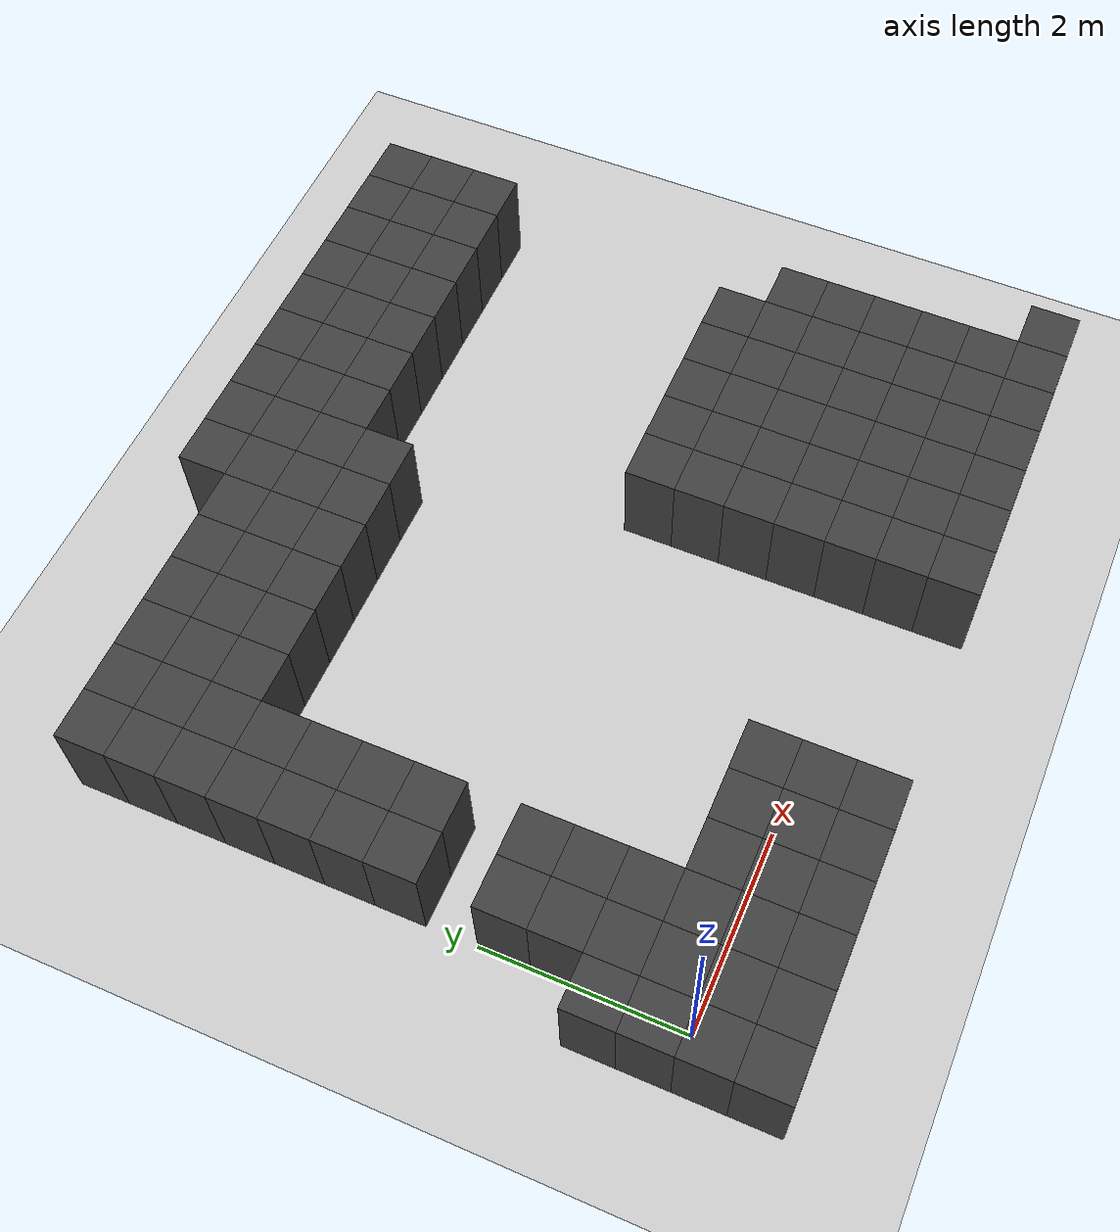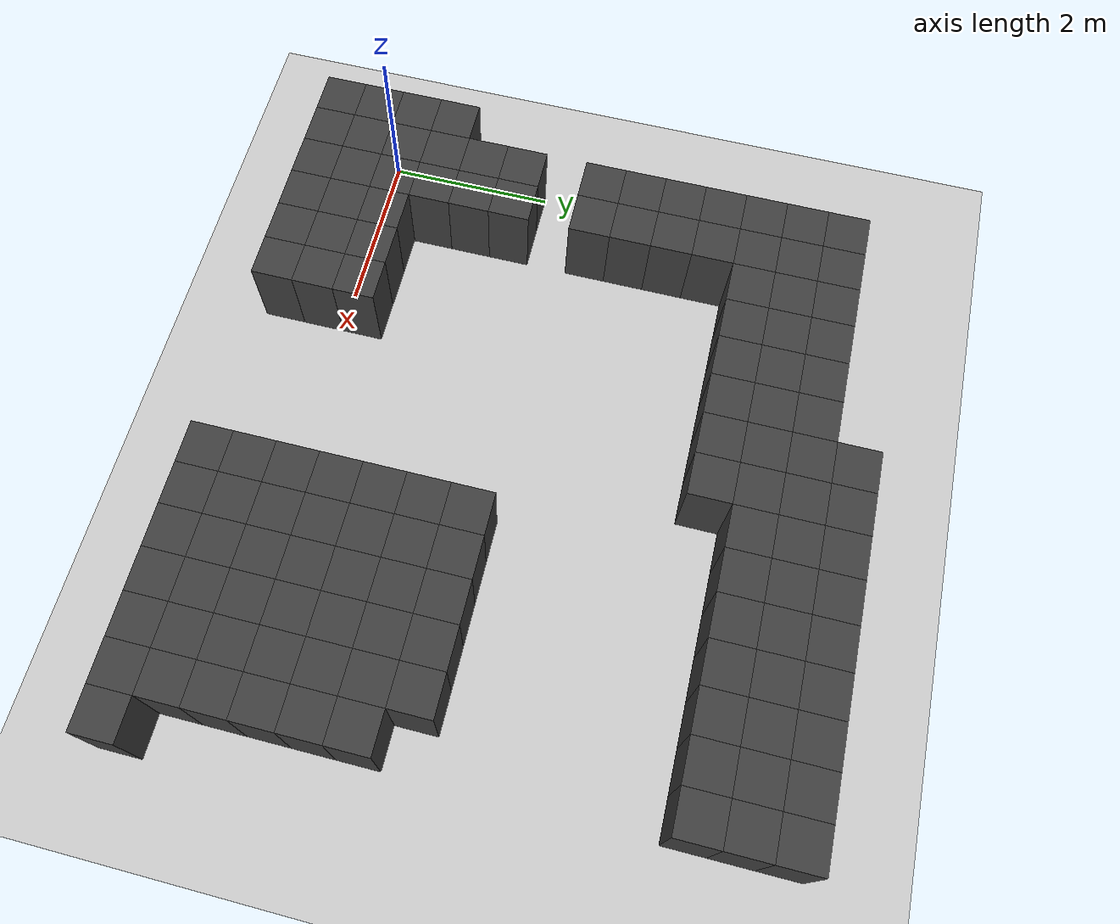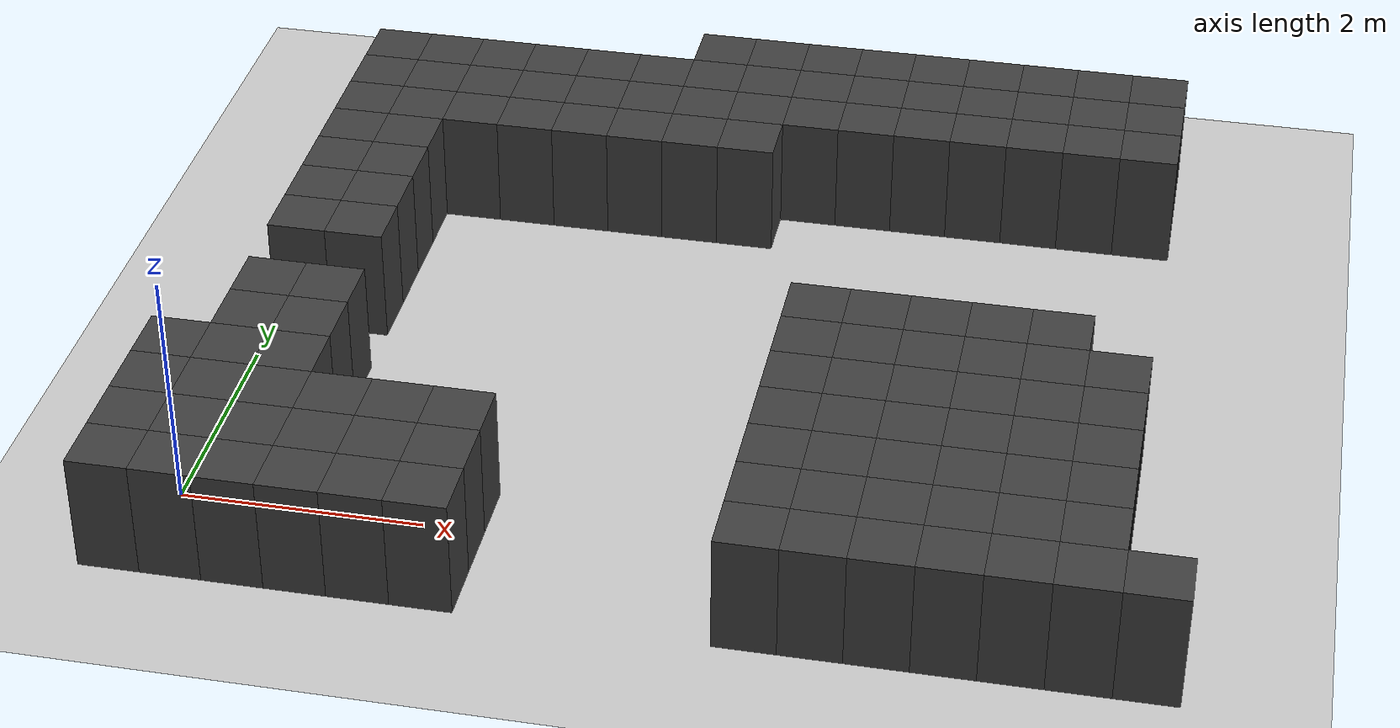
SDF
<sdf version="1.7">
 <world name="map_14888">
  <model name="ground_plane">
   <static>true</static>
   <link name="link">
    <collision name="collision">
     <geometry><plane><normal>0 0 1</normal><size>200 200</size></plane></geometry>
    </collision>
    <visual name="visual">
     <geometry><plane><normal>0 0 1</normal><size>200 200</size></plane></geometry>
     <material><ambient>0.8 0.8 0.8 1</ambient><diffuse>0.8 0.8 0.8 1</diffuse></material>
    </visual>
   </link>
  </model>
  <model name="maze_environment">
   <static>true</static>
   <link name="wall_473">
    <pose>3.250 6.250 0.500 0 0 0</pose>
    <collision name="col"><geometry><box><size>0.5 0.5 1.0</size></box></geometry></collision>
    <visual name="vis">
     <geometry><box><size>0.5 0.5 1.0</size></box></geometry>
     <material><ambient>0.15 0.15 0.15 1</ambient><diffuse>0.25 0.25 0.25 1</diffuse></material>
    </visual>
   </link>
   <link name="wall_474">
    <pose>3.750 6.250 0.500 0 0 0</pose>
    <collision name="col"><geometry><box><size>0.5 0.5 1.0</size></box></geometry></collision>
    <visual name="vis">
     <geometry><box><size>0.5 0.5 1.0</size></box></geometry>
     <material><ambient>0.15 0.15 0.15 1</ambient><diffuse>0.25 0.25 0.25 1</diffuse></material>
    </visual>
   </link>
   <link name="wall_475">
    <pose>4.250 6.250 0.500 0 0 0</pose>
    <collision name="col"><geometry><box><size>0.5 0.5 1.0</size></box></geometry></collision>
    <visual name="vis">
     <geometry><box><size>0.5 0.5 1.0</size></box></geometry>
     <material><ambient>0.15 0.15 0.15 1</ambient><diffuse>0.25 0.25 0.25 1</diffuse></material>
    </visual>
   </link>
   <link name="wall_476">
    <pose>4.750 6.250 0.500 0 0 0</pose>
    <collision name="col"><geometry><box><size>0.5 0.5 1.0</size></box></geometry></collision>
    <visual name="vis">
     <geometry><box><size>0.5 0.5 1.0</size></box></geometry>
     <material><ambient>0.15 0.15 0.15 1</ambient><diffuse>0.25 0.25 0.25 1</diffuse></material>
    </visual>
   </link>
   <link name="wall_477">
    <pose>5.250 6.250 0.500 0 0 0</pose>
    <collision name="col"><geometry><box><size>0.5 0.5 1.0</size></box></geometry></collision>
    <visual name="vis">
     <geometry><box><size>0.5 0.5 1.0</size></box></geometry>
     <material><ambient>0.15 0.15 0.15 1</ambient><diffuse>0.25 0.25 0.25 1</diffuse></material>
    </visual>
   </link>
   <link name="wall_478">
    <pose>5.750 6.250 0.500 0 0 0</pose>
    <collision name="col"><geometry><box><size>0.5 0.5 1.0</size></box></geometry></collision>
    <visual name="vis">
     <geometry><box><size>0.5 0.5 1.0</size></box></geometry>
     <material><ambient>0.15 0.15 0.15 1</ambient><diffuse>0.25 0.25 0.25 1</diffuse></material>
    </visual>
   </link>
   <link name="wall_479">
    <pose>6.250 6.250 0.500 0 0 0</pose>
    <collision name="col"><geometry><box><size>0.5 0.5 1.0</size></box></geometry></collision>
    <visual name="vis">
     <geometry><box><size>0.5 0.5 1.0</size></box></geometry>
     <material><ambient>0.15 0.15 0.15 1</ambient><diffuse>0.25 0.25 0.25 1</diffuse></material>
    </visual>
   </link>
   <link name="wall_480">
    <pose>6.750 6.250 0.500 0 0 0</pose>
    <collision name="col"><geometry><box><size>0.5 0.5 1.0</size></box></geometry></collision>
    <visual name="vis">
     <geometry><box><size>0.5 0.5 1.0</size></box></geometry>
     <material><ambient>0.15 0.15 0.15 1</ambient><diffuse>0.25 0.25 0.25 1</diffuse></material>
    </visual>
   </link>
   <link name="wall_481">
    <pose>7.250 6.250 0.500 0 0 0</pose>
    <collision name="col"><geometry><box><size>0.5 0.5 1.0</size></box></geometry></collision>
    <visual name="vis">
     <geometry><box><size>0.5 0.5 1.0</size></box></geometry>
     <material><ambient>0.15 0.15 0.15 1</ambient><diffuse>0.25 0.25 0.25 1</diffuse></material>
    </visual>
   </link>
   <link name="wall_502">
    <pose>0.250 5.750 0.500 0 0 0</pose>
    <collision name="col"><geometry><box><size>0.5 0.5 1.0</size></box></geometry></collision>
    <visual name="vis">
     <geometry><box><size>0.5 0.5 1.0</size></box></geometry>
     <material><ambient>0.15 0.15 0.15 1</ambient><diffuse>0.25 0.25 0.25 1</diffuse></material>
    </visual>
   </link>
   <link name="wall_503">
    <pose>0.750 5.750 0.500 0 0 0</pose>
    <collision name="col"><geometry><box><size>0.5 0.5 1.0</size></box></geometry></collision>
    <visual name="vis">
     <geometry><box><size>0.5 0.5 1.0</size></box></geometry>
     <material><ambient>0.15 0.15 0.15 1</ambient><diffuse>0.25 0.25 0.25 1</diffuse></material>
    </visual>
   </link>
   <link name="wall_504">
    <pose>1.250 5.750 0.500 0 0 0</pose>
    <collision name="col"><geometry><box><size>0.5 0.5 1.0</size></box></geometry></collision>
    <visual name="vis">
     <geometry><box><size>0.5 0.5 1.0</size></box></geometry>
     <material><ambient>0.15 0.15 0.15 1</ambient><diffuse>0.25 0.25 0.25 1</diffuse></material>
    </visual>
   </link>
   <link name="wall_505">
    <pose>1.750 5.750 0.500 0 0 0</pose>
    <collision name="col"><geometry><box><size>0.5 0.5 1.0</size></box></geometry></collision>
    <visual name="vis">
     <geometry><box><size>0.5 0.5 1.0</size></box></geometry>
     <material><ambient>0.15 0.15 0.15 1</ambient><diffuse>0.25 0.25 0.25 1</diffuse></material>
    </visual>
   </link>
   <link name="wall_506">
    <pose>2.250 5.750 0.500 0 0 0</pose>
    <collision name="col"><geometry><box><size>0.5 0.5 1.0</size></box></geometry></collision>
    <visual name="vis">
     <geometry><box><size>0.5 0.5 1.0</size></box></geometry>
     <material><ambient>0.15 0.15 0.15 1</ambient><diffuse>0.25 0.25 0.25 1</diffuse></material>
    </visual>
   </link>
   <link name="wall_507">
    <pose>2.750 5.750 0.500 0 0 0</pose>
    <collision name="col"><geometry><box><size>0.5 0.5 1.0</size></box></geometry></collision>
    <visual name="vis">
     <geometry><box><size>0.5 0.5 1.0</size></box></geometry>
     <material><ambient>0.15 0.15 0.15 1</ambient><diffuse>0.25 0.25 0.25 1</diffuse></material>
    </visual>
   </link>
   <link name="wall_508">
    <pose>3.250 5.750 0.500 0 0 0</pose>
    <collision name="col"><geometry><box><size>0.5 0.5 1.0</size></box></geometry></collision>
    <visual name="vis">
     <geometry><box><size>0.5 0.5 1.0</size></box></geometry>
     <material><ambient>0.15 0.15 0.15 1</ambient><diffuse>0.25 0.25 0.25 1</diffuse></material>
    </visual>
   </link>
   <link name="wall_509">
    <pose>3.750 5.750 0.500 0 0 0</pose>
    <collision name="col"><geometry><box><size>0.5 0.5 1.0</size></box></geometry></collision>
    <visual name="vis">
     <geometry><box><size>0.5 0.5 1.0</size></box></geometry>
     <material><ambient>0.15 0.15 0.15 1</ambient><diffuse>0.25 0.25 0.25 1</diffuse></material>
    </visual>
   </link>
   <link name="wall_510">
    <pose>4.250 5.750 0.500 0 0 0</pose>
    <collision name="col"><geometry><box><size>0.5 0.5 1.0</size></box></geometry></collision>
    <visual name="vis">
     <geometry><box><size>0.5 0.5 1.0</size></box></geometry>
     <material><ambient>0.15 0.15 0.15 1</ambient><diffuse>0.25 0.25 0.25 1</diffuse></material>
    </visual>
   </link>
   <link name="wall_511">
    <pose>4.750 5.750 0.500 0 0 0</pose>
    <collision name="col"><geometry><box><size>0.5 0.5 1.0</size></box></geometry></collision>
    <visual name="vis">
     <geometry><box><size>0.5 0.5 1.0</size></box></geometry>
     <material><ambient>0.15 0.15 0.15 1</ambient><diffuse>0.25 0.25 0.25 1</diffuse></material>
    </visual>
   </link>
   <link name="wall_512">
    <pose>5.250 5.750 0.500 0 0 0</pose>
    <collision name="col"><geometry><box><size>0.5 0.5 1.0</size></box></geometry></collision>
    <visual name="vis">
     <geometry><box><size>0.5 0.5 1.0</size></box></geometry>
     <material><ambient>0.15 0.15 0.15 1</ambient><diffuse>0.25 0.25 0.25 1</diffuse></material>
    </visual>
   </link>
   <link name="wall_513">
    <pose>5.750 5.750 0.500 0 0 0</pose>
    <collision name="col"><geometry><box><size>0.5 0.5 1.0</size></box></geometry></collision>
    <visual name="vis">
     <geometry><box><size>0.5 0.5 1.0</size></box></geometry>
     <material><ambient>0.15 0.15 0.15 1</ambient><diffuse>0.25 0.25 0.25 1</diffuse></material>
    </visual>
   </link>
   <link name="wall_514">
    <pose>6.250 5.750 0.500 0 0 0</pose>
    <collision name="col"><geometry><box><size>0.5 0.5 1.0</size></box></geometry></collision>
    <visual name="vis">
     <geometry><box><size>0.5 0.5 1.0</size></box></geometry>
     <material><ambient>0.15 0.15 0.15 1</ambient><diffuse>0.25 0.25 0.25 1</diffuse></material>
    </visual>
   </link>
   <link name="wall_515">
    <pose>6.750 5.750 0.500 0 0 0</pose>
    <collision name="col"><geometry><box><size>0.5 0.5 1.0</size></box></geometry></collision>
    <visual name="vis">
     <geometry><box><size>0.5 0.5 1.0</size></box></geometry>
     <material><ambient>0.15 0.15 0.15 1</ambient><diffuse>0.25 0.25 0.25 1</diffuse></material>
    </visual>
   </link>
   <link name="wall_516">
    <pose>7.250 5.750 0.500 0 0 0</pose>
    <collision name="col"><geometry><box><size>0.5 0.5 1.0</size></box></geometry></collision>
    <visual name="vis">
     <geometry><box><size>0.5 0.5 1.0</size></box></geometry>
     <material><ambient>0.15 0.15 0.15 1</ambient><diffuse>0.25 0.25 0.25 1</diffuse></material>
    </visual>
   </link>
   <link name="wall_537">
    <pose>0.250 5.250 0.500 0 0 0</pose>
    <collision name="col"><geometry><box><size>0.5 0.5 1.0</size></box></geometry></collision>
    <visual name="vis">
     <geometry><box><size>0.5 0.5 1.0</size></box></geometry>
     <material><ambient>0.15 0.15 0.15 1</ambient><diffuse>0.25 0.25 0.25 1</diffuse></material>
    </visual>
   </link>
   <link name="wall_538">
    <pose>0.750 5.250 0.500 0 0 0</pose>
    <collision name="col"><geometry><box><size>0.5 0.5 1.0</size></box></geometry></collision>
    <visual name="vis">
     <geometry><box><size>0.5 0.5 1.0</size></box></geometry>
     <material><ambient>0.15 0.15 0.15 1</ambient><diffuse>0.25 0.25 0.25 1</diffuse></material>
    </visual>
   </link>
   <link name="wall_539">
    <pose>1.250 5.250 0.500 0 0 0</pose>
    <collision name="col"><geometry><box><size>0.5 0.5 1.0</size></box></geometry></collision>
    <visual name="vis">
     <geometry><box><size>0.5 0.5 1.0</size></box></geometry>
     <material><ambient>0.15 0.15 0.15 1</ambient><diffuse>0.25 0.25 0.25 1</diffuse></material>
    </visual>
   </link>
   <link name="wall_540">
    <pose>1.750 5.250 0.500 0 0 0</pose>
    <collision name="col"><geometry><box><size>0.5 0.5 1.0</size></box></geometry></collision>
    <visual name="vis">
     <geometry><box><size>0.5 0.5 1.0</size></box></geometry>
     <material><ambient>0.15 0.15 0.15 1</ambient><diffuse>0.25 0.25 0.25 1</diffuse></material>
    </visual>
   </link>
   <link name="wall_541">
    <pose>2.250 5.250 0.500 0 0 0</pose>
    <collision name="col"><geometry><box><size>0.5 0.5 1.0</size></box></geometry></collision>
    <visual name="vis">
     <geometry><box><size>0.5 0.5 1.0</size></box></geometry>
     <material><ambient>0.15 0.15 0.15 1</ambient><diffuse>0.25 0.25 0.25 1</diffuse></material>
    </visual>
   </link>
   <link name="wall_542">
    <pose>2.750 5.250 0.500 0 0 0</pose>
    <collision name="col"><geometry><box><size>0.5 0.5 1.0</size></box></geometry></collision>
    <visual name="vis">
     <geometry><box><size>0.5 0.5 1.0</size></box></geometry>
     <material><ambient>0.15 0.15 0.15 1</ambient><diffuse>0.25 0.25 0.25 1</diffuse></material>
    </visual>
   </link>
   <link name="wall_543">
    <pose>3.250 5.250 0.500 0 0 0</pose>
    <collision name="col"><geometry><box><size>0.5 0.5 1.0</size></box></geometry></collision>
    <visual name="vis">
     <geometry><box><size>0.5 0.5 1.0</size></box></geometry>
     <material><ambient>0.15 0.15 0.15 1</ambient><diffuse>0.25 0.25 0.25 1</diffuse></material>
    </visual>
   </link>
   <link name="wall_544">
    <pose>3.750 5.250 0.500 0 0 0</pose>
    <collision name="col"><geometry><box><size>0.5 0.5 1.0</size></box></geometry></collision>
    <visual name="vis">
     <geometry><box><size>0.5 0.5 1.0</size></box></geometry>
     <material><ambient>0.15 0.15 0.15 1</ambient><diffuse>0.25 0.25 0.25 1</diffuse></material>
    </visual>
   </link>
   <link name="wall_545">
    <pose>4.250 5.250 0.500 0 0 0</pose>
    <collision name="col"><geometry><box><size>0.5 0.5 1.0</size></box></geometry></collision>
    <visual name="vis">
     <geometry><box><size>0.5 0.5 1.0</size></box></geometry>
     <material><ambient>0.15 0.15 0.15 1</ambient><diffuse>0.25 0.25 0.25 1</diffuse></material>
    </visual>
   </link>
   <link name="wall_546">
    <pose>4.750 5.250 0.500 0 0 0</pose>
    <collision name="col"><geometry><box><size>0.5 0.5 1.0</size></box></geometry></collision>
    <visual name="vis">
     <geometry><box><size>0.5 0.5 1.0</size></box></geometry>
     <material><ambient>0.15 0.15 0.15 1</ambient><diffuse>0.25 0.25 0.25 1</diffuse></material>
    </visual>
   </link>
   <link name="wall_547">
    <pose>5.250 5.250 0.500 0 0 0</pose>
    <collision name="col"><geometry><box><size>0.5 0.5 1.0</size></box></geometry></collision>
    <visual name="vis">
     <geometry><box><size>0.5 0.5 1.0</size></box></geometry>
     <material><ambient>0.15 0.15 0.15 1</ambient><diffuse>0.25 0.25 0.25 1</diffuse></material>
    </visual>
   </link>
   <link name="wall_548">
    <pose>5.750 5.250 0.500 0 0 0</pose>
    <collision name="col"><geometry><box><size>0.5 0.5 1.0</size></box></geometry></collision>
    <visual name="vis">
     <geometry><box><size>0.5 0.5 1.0</size></box></geometry>
     <material><ambient>0.15 0.15 0.15 1</ambient><diffuse>0.25 0.25 0.25 1</diffuse></material>
    </visual>
   </link>
   <link name="wall_549">
    <pose>6.250 5.250 0.500 0 0 0</pose>
    <collision name="col"><geometry><box><size>0.5 0.5 1.0</size></box></geometry></collision>
    <visual name="vis">
     <geometry><box><size>0.5 0.5 1.0</size></box></geometry>
     <material><ambient>0.15 0.15 0.15 1</ambient><diffuse>0.25 0.25 0.25 1</diffuse></material>
    </visual>
   </link>
   <link name="wall_550">
    <pose>6.750 5.250 0.500 0 0 0</pose>
    <collision name="col"><geometry><box><size>0.5 0.5 1.0</size></box></geometry></collision>
    <visual name="vis">
     <geometry><box><size>0.5 0.5 1.0</size></box></geometry>
     <material><ambient>0.15 0.15 0.15 1</ambient><diffuse>0.25 0.25 0.25 1</diffuse></material>
    </visual>
   </link>
   <link name="wall_551">
    <pose>7.250 5.250 0.500 0 0 0</pose>
    <collision name="col"><geometry><box><size>0.5 0.5 1.0</size></box></geometry></collision>
    <visual name="vis">
     <geometry><box><size>0.5 0.5 1.0</size></box></geometry>
     <material><ambient>0.15 0.15 0.15 1</ambient><diffuse>0.25 0.25 0.25 1</diffuse></material>
    </visual>
   </link>
   <link name="wall_573">
    <pose>0.250 4.750 0.500 0 0 0</pose>
    <collision name="col"><geometry><box><size>0.5 0.5 1.0</size></box></geometry></collision>
    <visual name="vis">
     <geometry><box><size>0.5 0.5 1.0</size></box></geometry>
     <material><ambient>0.15 0.15 0.15 1</ambient><diffuse>0.25 0.25 0.25 1</diffuse></material>
    </visual>
   </link>
   <link name="wall_574">
    <pose>0.750 4.750 0.500 0 0 0</pose>
    <collision name="col"><geometry><box><size>0.5 0.5 1.0</size></box></geometry></collision>
    <visual name="vis">
     <geometry><box><size>0.5 0.5 1.0</size></box></geometry>
     <material><ambient>0.15 0.15 0.15 1</ambient><diffuse>0.25 0.25 0.25 1</diffuse></material>
    </visual>
   </link>
   <link name="wall_575">
    <pose>1.250 4.750 0.500 0 0 0</pose>
    <collision name="col"><geometry><box><size>0.5 0.5 1.0</size></box></geometry></collision>
    <visual name="vis">
     <geometry><box><size>0.5 0.5 1.0</size></box></geometry>
     <material><ambient>0.15 0.15 0.15 1</ambient><diffuse>0.25 0.25 0.25 1</diffuse></material>
    </visual>
   </link>
   <link name="wall_576">
    <pose>1.750 4.750 0.500 0 0 0</pose>
    <collision name="col"><geometry><box><size>0.5 0.5 1.0</size></box></geometry></collision>
    <visual name="vis">
     <geometry><box><size>0.5 0.5 1.0</size></box></geometry>
     <material><ambient>0.15 0.15 0.15 1</ambient><diffuse>0.25 0.25 0.25 1</diffuse></material>
    </visual>
   </link>
   <link name="wall_577">
    <pose>2.250 4.750 0.500 0 0 0</pose>
    <collision name="col"><geometry><box><size>0.5 0.5 1.0</size></box></geometry></collision>
    <visual name="vis">
     <geometry><box><size>0.5 0.5 1.0</size></box></geometry>
     <material><ambient>0.15 0.15 0.15 1</ambient><diffuse>0.25 0.25 0.25 1</diffuse></material>
    </visual>
   </link>
   <link name="wall_578">
    <pose>2.750 4.750 0.500 0 0 0</pose>
    <collision name="col"><geometry><box><size>0.5 0.5 1.0</size></box></geometry></collision>
    <visual name="vis">
     <geometry><box><size>0.5 0.5 1.0</size></box></geometry>
     <material><ambient>0.15 0.15 0.15 1</ambient><diffuse>0.25 0.25 0.25 1</diffuse></material>
    </visual>
   </link>
   <link name="wall_579">
    <pose>3.250 4.750 0.500 0 0 0</pose>
    <collision name="col"><geometry><box><size>0.5 0.5 1.0</size></box></geometry></collision>
    <visual name="vis">
     <geometry><box><size>0.5 0.5 1.0</size></box></geometry>
     <material><ambient>0.15 0.15 0.15 1</ambient><diffuse>0.25 0.25 0.25 1</diffuse></material>
    </visual>
   </link>
   <link name="wall_580">
    <pose>3.750 4.750 0.500 0 0 0</pose>
    <collision name="col"><geometry><box><size>0.5 0.5 1.0</size></box></geometry></collision>
    <visual name="vis">
     <geometry><box><size>0.5 0.5 1.0</size></box></geometry>
     <material><ambient>0.15 0.15 0.15 1</ambient><diffuse>0.25 0.25 0.25 1</diffuse></material>
    </visual>
   </link>
   <link name="wall_603">
    <pose>0.250 4.250 0.500 0 0 0</pose>
    <collision name="col"><geometry><box><size>0.5 0.5 1.0</size></box></geometry></collision>
    <visual name="vis">
     <geometry><box><size>0.5 0.5 1.0</size></box></geometry>
     <material><ambient>0.15 0.15 0.15 1</ambient><diffuse>0.25 0.25 0.25 1</diffuse></material>
    </visual>
   </link>
   <link name="wall_604">
    <pose>0.750 4.250 0.500 0 0 0</pose>
    <collision name="col"><geometry><box><size>0.5 0.5 1.0</size></box></geometry></collision>
    <visual name="vis">
     <geometry><box><size>0.5 0.5 1.0</size></box></geometry>
     <material><ambient>0.15 0.15 0.15 1</ambient><diffuse>0.25 0.25 0.25 1</diffuse></material>
    </visual>
   </link>
   <link name="wall_628">
    <pose>0.250 3.750 0.500 0 0 0</pose>
    <collision name="col"><geometry><box><size>0.5 0.5 1.0</size></box></geometry></collision>
    <visual name="vis">
     <geometry><box><size>0.5 0.5 1.0</size></box></geometry>
     <material><ambient>0.15 0.15 0.15 1</ambient><diffuse>0.25 0.25 0.25 1</diffuse></material>
    </visual>
   </link>
   <link name="wall_629">
    <pose>0.750 3.750 0.500 0 0 0</pose>
    <collision name="col"><geometry><box><size>0.5 0.5 1.0</size></box></geometry></collision>
    <visual name="vis">
     <geometry><box><size>0.5 0.5 1.0</size></box></geometry>
     <material><ambient>0.15 0.15 0.15 1</ambient><diffuse>0.25 0.25 0.25 1</diffuse></material>
    </visual>
   </link>
   <link name="wall_648">
    <pose>0.250 3.250 0.500 0 0 0</pose>
    <collision name="col"><geometry><box><size>0.5 0.5 1.0</size></box></geometry></collision>
    <visual name="vis">
     <geometry><box><size>0.5 0.5 1.0</size></box></geometry>
     <material><ambient>0.15 0.15 0.15 1</ambient><diffuse>0.25 0.25 0.25 1</diffuse></material>
    </visual>
   </link>
   <link name="wall_649">
    <pose>0.750 3.250 0.500 0 0 0</pose>
    <collision name="col"><geometry><box><size>0.5 0.5 1.0</size></box></geometry></collision>
    <visual name="vis">
     <geometry><box><size>0.5 0.5 1.0</size></box></geometry>
     <material><ambient>0.15 0.15 0.15 1</ambient><diffuse>0.25 0.25 0.25 1</diffuse></material>
    </visual>
   </link>
   <link name="wall_672">
    <pose>0.250 2.750 0.500 0 0 0</pose>
    <collision name="col"><geometry><box><size>0.5 0.5 1.0</size></box></geometry></collision>
    <visual name="vis">
     <geometry><box><size>0.5 0.5 1.0</size></box></geometry>
     <material><ambient>0.15 0.15 0.15 1</ambient><diffuse>0.25 0.25 0.25 1</diffuse></material>
    </visual>
   </link>
   <link name="wall_673">
    <pose>0.750 2.750 0.500 0 0 0</pose>
    <collision name="col"><geometry><box><size>0.5 0.5 1.0</size></box></geometry></collision>
    <visual name="vis">
     <geometry><box><size>0.5 0.5 1.0</size></box></geometry>
     <material><ambient>0.15 0.15 0.15 1</ambient><diffuse>0.25 0.25 0.25 1</diffuse></material>
    </visual>
   </link>
   <link name="wall_693">
    <pose>4.750 2.250 0.500 0 0 0</pose>
    <collision name="col"><geometry><box><size>0.5 0.5 1.0</size></box></geometry></collision>
    <visual name="vis">
     <geometry><box><size>0.5 0.5 1.0</size></box></geometry>
     <material><ambient>0.15 0.15 0.15 1</ambient><diffuse>0.25 0.25 0.25 1</diffuse></material>
    </visual>
   </link>
   <link name="wall_694">
    <pose>5.250 2.250 0.500 0 0 0</pose>
    <collision name="col"><geometry><box><size>0.5 0.5 1.0</size></box></geometry></collision>
    <visual name="vis">
     <geometry><box><size>0.5 0.5 1.0</size></box></geometry>
     <material><ambient>0.15 0.15 0.15 1</ambient><diffuse>0.25 0.25 0.25 1</diffuse></material>
    </visual>
   </link>
   <link name="wall_695">
    <pose>5.750 2.250 0.500 0 0 0</pose>
    <collision name="col"><geometry><box><size>0.5 0.5 1.0</size></box></geometry></collision>
    <visual name="vis">
     <geometry><box><size>0.5 0.5 1.0</size></box></geometry>
     <material><ambient>0.15 0.15 0.15 1</ambient><diffuse>0.25 0.25 0.25 1</diffuse></material>
    </visual>
   </link>
   <link name="wall_696">
    <pose>6.250 2.250 0.500 0 0 0</pose>
    <collision name="col"><geometry><box><size>0.5 0.5 1.0</size></box></geometry></collision>
    <visual name="vis">
     <geometry><box><size>0.5 0.5 1.0</size></box></geometry>
     <material><ambient>0.15 0.15 0.15 1</ambient><diffuse>0.25 0.25 0.25 1</diffuse></material>
    </visual>
   </link>
   <link name="wall_697">
    <pose>6.750 2.250 0.500 0 0 0</pose>
    <collision name="col"><geometry><box><size>0.5 0.5 1.0</size></box></geometry></collision>
    <visual name="vis">
     <geometry><box><size>0.5 0.5 1.0</size></box></geometry>
     <material><ambient>0.15 0.15 0.15 1</ambient><diffuse>0.25 0.25 0.25 1</diffuse></material>
    </visual>
   </link>
   <link name="wall_721">
    <pose>0.250 1.750 0.500 0 0 0</pose>
    <collision name="col"><geometry><box><size>0.5 0.5 1.0</size></box></geometry></collision>
    <visual name="vis">
     <geometry><box><size>0.5 0.5 1.0</size></box></geometry>
     <material><ambient>0.15 0.15 0.15 1</ambient><diffuse>0.25 0.25 0.25 1</diffuse></material>
    </visual>
   </link>
   <link name="wall_722">
    <pose>0.750 1.750 0.500 0 0 0</pose>
    <collision name="col"><geometry><box><size>0.5 0.5 1.0</size></box></geometry></collision>
    <visual name="vis">
     <geometry><box><size>0.5 0.5 1.0</size></box></geometry>
     <material><ambient>0.15 0.15 0.15 1</ambient><diffuse>0.25 0.25 0.25 1</diffuse></material>
    </visual>
   </link>
   <link name="wall_723">
    <pose>4.750 1.750 0.500 0 0 0</pose>
    <collision name="col"><geometry><box><size>0.5 0.5 1.0</size></box></geometry></collision>
    <visual name="vis">
     <geometry><box><size>0.5 0.5 1.0</size></box></geometry>
     <material><ambient>0.15 0.15 0.15 1</ambient><diffuse>0.25 0.25 0.25 1</diffuse></material>
    </visual>
   </link>
   <link name="wall_724">
    <pose>5.250 1.750 0.500 0 0 0</pose>
    <collision name="col"><geometry><box><size>0.5 0.5 1.0</size></box></geometry></collision>
    <visual name="vis">
     <geometry><box><size>0.5 0.5 1.0</size></box></geometry>
     <material><ambient>0.15 0.15 0.15 1</ambient><diffuse>0.25 0.25 0.25 1</diffuse></material>
    </visual>
   </link>
   <link name="wall_725">
    <pose>5.750 1.750 0.500 0 0 0</pose>
    <collision name="col"><geometry><box><size>0.5 0.5 1.0</size></box></geometry></collision>
    <visual name="vis">
     <geometry><box><size>0.5 0.5 1.0</size></box></geometry>
     <material><ambient>0.15 0.15 0.15 1</ambient><diffuse>0.25 0.25 0.25 1</diffuse></material>
    </visual>
   </link>
   <link name="wall_726">
    <pose>6.250 1.750 0.500 0 0 0</pose>
    <collision name="col"><geometry><box><size>0.5 0.5 1.0</size></box></geometry></collision>
    <visual name="vis">
     <geometry><box><size>0.5 0.5 1.0</size></box></geometry>
     <material><ambient>0.15 0.15 0.15 1</ambient><diffuse>0.25 0.25 0.25 1</diffuse></material>
    </visual>
   </link>
   <link name="wall_727">
    <pose>6.750 1.750 0.500 0 0 0</pose>
    <collision name="col"><geometry><box><size>0.5 0.5 1.0</size></box></geometry></collision>
    <visual name="vis">
     <geometry><box><size>0.5 0.5 1.0</size></box></geometry>
     <material><ambient>0.15 0.15 0.15 1</ambient><diffuse>0.25 0.25 0.25 1</diffuse></material>
    </visual>
   </link>
   <link name="wall_728">
    <pose>7.250 1.750 0.500 0 0 0</pose>
    <collision name="col"><geometry><box><size>0.5 0.5 1.0</size></box></geometry></collision>
    <visual name="vis">
     <geometry><box><size>0.5 0.5 1.0</size></box></geometry>
     <material><ambient>0.15 0.15 0.15 1</ambient><diffuse>0.25 0.25 0.25 1</diffuse></material>
    </visual>
   </link>
   <link name="wall_763">
    <pose>0.250 1.250 0.500 0 0 0</pose>
    <collision name="col"><geometry><box><size>0.5 0.5 1.0</size></box></geometry></collision>
    <visual name="vis">
     <geometry><box><size>0.5 0.5 1.0</size></box></geometry>
     <material><ambient>0.15 0.15 0.15 1</ambient><diffuse>0.25 0.25 0.25 1</diffuse></material>
    </visual>
   </link>
   <link name="wall_764">
    <pose>0.750 1.250 0.500 0 0 0</pose>
    <collision name="col"><geometry><box><size>0.5 0.5 1.0</size></box></geometry></collision>
    <visual name="vis">
     <geometry><box><size>0.5 0.5 1.0</size></box></geometry>
     <material><ambient>0.15 0.15 0.15 1</ambient><diffuse>0.25 0.25 0.25 1</diffuse></material>
    </visual>
   </link>
   <link name="wall_765">
    <pose>4.750 1.250 0.500 0 0 0</pose>
    <collision name="col"><geometry><box><size>0.5 0.5 1.0</size></box></geometry></collision>
    <visual name="vis">
     <geometry><box><size>0.5 0.5 1.0</size></box></geometry>
     <material><ambient>0.15 0.15 0.15 1</ambient><diffuse>0.25 0.25 0.25 1</diffuse></material>
    </visual>
   </link>
   <link name="wall_766">
    <pose>5.250 1.250 0.500 0 0 0</pose>
    <collision name="col"><geometry><box><size>0.5 0.5 1.0</size></box></geometry></collision>
    <visual name="vis">
     <geometry><box><size>0.5 0.5 1.0</size></box></geometry>
     <material><ambient>0.15 0.15 0.15 1</ambient><diffuse>0.25 0.25 0.25 1</diffuse></material>
    </visual>
   </link>
   <link name="wall_767">
    <pose>5.750 1.250 0.500 0 0 0</pose>
    <collision name="col"><geometry><box><size>0.5 0.5 1.0</size></box></geometry></collision>
    <visual name="vis">
     <geometry><box><size>0.5 0.5 1.0</size></box></geometry>
     <material><ambient>0.15 0.15 0.15 1</ambient><diffuse>0.25 0.25 0.25 1</diffuse></material>
    </visual>
   </link>
   <link name="wall_768">
    <pose>6.250 1.250 0.500 0 0 0</pose>
    <collision name="col"><geometry><box><size>0.5 0.5 1.0</size></box></geometry></collision>
    <visual name="vis">
     <geometry><box><size>0.5 0.5 1.0</size></box></geometry>
     <material><ambient>0.15 0.15 0.15 1</ambient><diffuse>0.25 0.25 0.25 1</diffuse></material>
    </visual>
   </link>
   <link name="wall_769">
    <pose>6.750 1.250 0.500 0 0 0</pose>
    <collision name="col"><geometry><box><size>0.5 0.5 1.0</size></box></geometry></collision>
    <visual name="vis">
     <geometry><box><size>0.5 0.5 1.0</size></box></geometry>
     <material><ambient>0.15 0.15 0.15 1</ambient><diffuse>0.25 0.25 0.25 1</diffuse></material>
    </visual>
   </link>
   <link name="wall_770">
    <pose>7.250 1.250 0.500 0 0 0</pose>
    <collision name="col"><geometry><box><size>0.5 0.5 1.0</size></box></geometry></collision>
    <visual name="vis">
     <geometry><box><size>0.5 0.5 1.0</size></box></geometry>
     <material><ambient>0.15 0.15 0.15 1</ambient><diffuse>0.25 0.25 0.25 1</diffuse></material>
    </visual>
   </link>
   <link name="wall_804">
    <pose>-0.250 0.750 0.500 0 0 0</pose>
    <collision name="col"><geometry><box><size>0.5 0.5 1.0</size></box></geometry></collision>
    <visual name="vis">
     <geometry><box><size>0.5 0.5 1.0</size></box></geometry>
     <material><ambient>0.15 0.15 0.15 1</ambient><diffuse>0.25 0.25 0.25 1</diffuse></material>
    </visual>
   </link>
   <link name="wall_805">
    <pose>0.250 0.750 0.500 0 0 0</pose>
    <collision name="col"><geometry><box><size>0.5 0.5 1.0</size></box></geometry></collision>
    <visual name="vis">
     <geometry><box><size>0.5 0.5 1.0</size></box></geometry>
     <material><ambient>0.15 0.15 0.15 1</ambient><diffuse>0.25 0.25 0.25 1</diffuse></material>
    </visual>
   </link>
   <link name="wall_806">
    <pose>0.750 0.750 0.500 0 0 0</pose>
    <collision name="col"><geometry><box><size>0.5 0.5 1.0</size></box></geometry></collision>
    <visual name="vis">
     <geometry><box><size>0.5 0.5 1.0</size></box></geometry>
     <material><ambient>0.15 0.15 0.15 1</ambient><diffuse>0.25 0.25 0.25 1</diffuse></material>
    </visual>
   </link>
   <link name="wall_807">
    <pose>4.750 0.750 0.500 0 0 0</pose>
    <collision name="col"><geometry><box><size>0.5 0.5 1.0</size></box></geometry></collision>
    <visual name="vis">
     <geometry><box><size>0.5 0.5 1.0</size></box></geometry>
     <material><ambient>0.15 0.15 0.15 1</ambient><diffuse>0.25 0.25 0.25 1</diffuse></material>
    </visual>
   </link>
   <link name="wall_808">
    <pose>5.250 0.750 0.500 0 0 0</pose>
    <collision name="col"><geometry><box><size>0.5 0.5 1.0</size></box></geometry></collision>
    <visual name="vis">
     <geometry><box><size>0.5 0.5 1.0</size></box></geometry>
     <material><ambient>0.15 0.15 0.15 1</ambient><diffuse>0.25 0.25 0.25 1</diffuse></material>
    </visual>
   </link>
   <link name="wall_809">
    <pose>5.750 0.750 0.500 0 0 0</pose>
    <collision name="col"><geometry><box><size>0.5 0.5 1.0</size></box></geometry></collision>
    <visual name="vis">
     <geometry><box><size>0.5 0.5 1.0</size></box></geometry>
     <material><ambient>0.15 0.15 0.15 1</ambient><diffuse>0.25 0.25 0.25 1</diffuse></material>
    </visual>
   </link>
   <link name="wall_810">
    <pose>6.250 0.750 0.500 0 0 0</pose>
    <collision name="col"><geometry><box><size>0.5 0.5 1.0</size></box></geometry></collision>
    <visual name="vis">
     <geometry><box><size>0.5 0.5 1.0</size></box></geometry>
     <material><ambient>0.15 0.15 0.15 1</ambient><diffuse>0.25 0.25 0.25 1</diffuse></material>
    </visual>
   </link>
   <link name="wall_811">
    <pose>6.750 0.750 0.500 0 0 0</pose>
    <collision name="col"><geometry><box><size>0.5 0.5 1.0</size></box></geometry></collision>
    <visual name="vis">
     <geometry><box><size>0.5 0.5 1.0</size></box></geometry>
     <material><ambient>0.15 0.15 0.15 1</ambient><diffuse>0.25 0.25 0.25 1</diffuse></material>
    </visual>
   </link>
   <link name="wall_812">
    <pose>7.250 0.750 0.500 0 0 0</pose>
    <collision name="col"><geometry><box><size>0.5 0.5 1.0</size></box></geometry></collision>
    <visual name="vis">
     <geometry><box><size>0.5 0.5 1.0</size></box></geometry>
     <material><ambient>0.15 0.15 0.15 1</ambient><diffuse>0.25 0.25 0.25 1</diffuse></material>
    </visual>
   </link>
   <link name="wall_842">
    <pose>-0.250 0.250 0.500 0 0 0</pose>
    <collision name="col"><geometry><box><size>0.5 0.5 1.0</size></box></geometry></collision>
    <visual name="vis">
     <geometry><box><size>0.5 0.5 1.0</size></box></geometry>
     <material><ambient>0.15 0.15 0.15 1</ambient><diffuse>0.25 0.25 0.25 1</diffuse></material>
    </visual>
   </link>
   <link name="wall_843">
    <pose>0.250 0.250 0.500 0 0 0</pose>
    <collision name="col"><geometry><box><size>0.5 0.5 1.0</size></box></geometry></collision>
    <visual name="vis">
     <geometry><box><size>0.5 0.5 1.0</size></box></geometry>
     <material><ambient>0.15 0.15 0.15 1</ambient><diffuse>0.25 0.25 0.25 1</diffuse></material>
    </visual>
   </link>
   <link name="wall_844">
    <pose>0.750 0.250 0.500 0 0 0</pose>
    <collision name="col"><geometry><box><size>0.5 0.5 1.0</size></box></geometry></collision>
    <visual name="vis">
     <geometry><box><size>0.5 0.5 1.0</size></box></geometry>
     <material><ambient>0.15 0.15 0.15 1</ambient><diffuse>0.25 0.25 0.25 1</diffuse></material>
    </visual>
   </link>
   <link name="wall_845">
    <pose>1.250 0.250 0.500 0 0 0</pose>
    <collision name="col"><geometry><box><size>0.5 0.5 1.0</size></box></geometry></collision>
    <visual name="vis">
     <geometry><box><size>0.5 0.5 1.0</size></box></geometry>
     <material><ambient>0.15 0.15 0.15 1</ambient><diffuse>0.25 0.25 0.25 1</diffuse></material>
    </visual>
   </link>
   <link name="wall_846">
    <pose>1.750 0.250 0.500 0 0 0</pose>
    <collision name="col"><geometry><box><size>0.5 0.5 1.0</size></box></geometry></collision>
    <visual name="vis">
     <geometry><box><size>0.5 0.5 1.0</size></box></geometry>
     <material><ambient>0.15 0.15 0.15 1</ambient><diffuse>0.25 0.25 0.25 1</diffuse></material>
    </visual>
   </link>
   <link name="wall_847">
    <pose>2.250 0.250 0.500 0 0 0</pose>
    <collision name="col"><geometry><box><size>0.5 0.5 1.0</size></box></geometry></collision>
    <visual name="vis">
     <geometry><box><size>0.5 0.5 1.0</size></box></geometry>
     <material><ambient>0.15 0.15 0.15 1</ambient><diffuse>0.25 0.25 0.25 1</diffuse></material>
    </visual>
   </link>
   <link name="wall_848">
    <pose>4.750 0.250 0.500 0 0 0</pose>
    <collision name="col"><geometry><box><size>0.5 0.5 1.0</size></box></geometry></collision>
    <visual name="vis">
     <geometry><box><size>0.5 0.5 1.0</size></box></geometry>
     <material><ambient>0.15 0.15 0.15 1</ambient><diffuse>0.25 0.25 0.25 1</diffuse></material>
    </visual>
   </link>
   <link name="wall_849">
    <pose>5.250 0.250 0.500 0 0 0</pose>
    <collision name="col"><geometry><box><size>0.5 0.5 1.0</size></box></geometry></collision>
    <visual name="vis">
     <geometry><box><size>0.5 0.5 1.0</size></box></geometry>
     <material><ambient>0.15 0.15 0.15 1</ambient><diffuse>0.25 0.25 0.25 1</diffuse></material>
    </visual>
   </link>
   <link name="wall_850">
    <pose>5.750 0.250 0.500 0 0 0</pose>
    <collision name="col"><geometry><box><size>0.5 0.5 1.0</size></box></geometry></collision>
    <visual name="vis">
     <geometry><box><size>0.5 0.5 1.0</size></box></geometry>
     <material><ambient>0.15 0.15 0.15 1</ambient><diffuse>0.25 0.25 0.25 1</diffuse></material>
    </visual>
   </link>
   <link name="wall_851">
    <pose>6.250 0.250 0.500 0 0 0</pose>
    <collision name="col"><geometry><box><size>0.5 0.5 1.0</size></box></geometry></collision>
    <visual name="vis">
     <geometry><box><size>0.5 0.5 1.0</size></box></geometry>
     <material><ambient>0.15 0.15 0.15 1</ambient><diffuse>0.25 0.25 0.25 1</diffuse></material>
    </visual>
   </link>
   <link name="wall_852">
    <pose>6.750 0.250 0.500 0 0 0</pose>
    <collision name="col"><geometry><box><size>0.5 0.5 1.0</size></box></geometry></collision>
    <visual name="vis">
     <geometry><box><size>0.5 0.5 1.0</size></box></geometry>
     <material><ambient>0.15 0.15 0.15 1</ambient><diffuse>0.25 0.25 0.25 1</diffuse></material>
    </visual>
   </link>
   <link name="wall_853">
    <pose>7.250 0.250 0.500 0 0 0</pose>
    <collision name="col"><geometry><box><size>0.5 0.5 1.0</size></box></geometry></collision>
    <visual name="vis">
     <geometry><box><size>0.5 0.5 1.0</size></box></geometry>
     <material><ambient>0.15 0.15 0.15 1</ambient><diffuse>0.25 0.25 0.25 1</diffuse></material>
    </visual>
   </link>
   <link name="wall_883">
    <pose>-0.250 -0.250 0.500 0 0 0</pose>
    <collision name="col"><geometry><box><size>0.5 0.5 1.0</size></box></geometry></collision>
    <visual name="vis">
     <geometry><box><size>0.5 0.5 1.0</size></box></geometry>
     <material><ambient>0.15 0.15 0.15 1</ambient><diffuse>0.25 0.25 0.25 1</diffuse></material>
    </visual>
   </link>
   <link name="wall_884">
    <pose>0.250 -0.250 0.500 0 0 0</pose>
    <collision name="col"><geometry><box><size>0.5 0.5 1.0</size></box></geometry></collision>
    <visual name="vis">
     <geometry><box><size>0.5 0.5 1.0</size></box></geometry>
     <material><ambient>0.15 0.15 0.15 1</ambient><diffuse>0.25 0.25 0.25 1</diffuse></material>
    </visual>
   </link>
   <link name="wall_885">
    <pose>0.750 -0.250 0.500 0 0 0</pose>
    <collision name="col"><geometry><box><size>0.5 0.5 1.0</size></box></geometry></collision>
    <visual name="vis">
     <geometry><box><size>0.5 0.5 1.0</size></box></geometry>
     <material><ambient>0.15 0.15 0.15 1</ambient><diffuse>0.25 0.25 0.25 1</diffuse></material>
    </visual>
   </link>
   <link name="wall_886">
    <pose>1.250 -0.250 0.500 0 0 0</pose>
    <collision name="col"><geometry><box><size>0.5 0.5 1.0</size></box></geometry></collision>
    <visual name="vis">
     <geometry><box><size>0.5 0.5 1.0</size></box></geometry>
     <material><ambient>0.15 0.15 0.15 1</ambient><diffuse>0.25 0.25 0.25 1</diffuse></material>
    </visual>
   </link>
   <link name="wall_887">
    <pose>1.750 -0.250 0.500 0 0 0</pose>
    <collision name="col"><geometry><box><size>0.5 0.5 1.0</size></box></geometry></collision>
    <visual name="vis">
     <geometry><box><size>0.5 0.5 1.0</size></box></geometry>
     <material><ambient>0.15 0.15 0.15 1</ambient><diffuse>0.25 0.25 0.25 1</diffuse></material>
    </visual>
   </link>
   <link name="wall_888">
    <pose>2.250 -0.250 0.500 0 0 0</pose>
    <collision name="col"><geometry><box><size>0.5 0.5 1.0</size></box></geometry></collision>
    <visual name="vis">
     <geometry><box><size>0.5 0.5 1.0</size></box></geometry>
     <material><ambient>0.15 0.15 0.15 1</ambient><diffuse>0.25 0.25 0.25 1</diffuse></material>
    </visual>
   </link>
   <link name="wall_889">
    <pose>4.750 -0.250 0.500 0 0 0</pose>
    <collision name="col"><geometry><box><size>0.5 0.5 1.0</size></box></geometry></collision>
    <visual name="vis">
     <geometry><box><size>0.5 0.5 1.0</size></box></geometry>
     <material><ambient>0.15 0.15 0.15 1</ambient><diffuse>0.25 0.25 0.25 1</diffuse></material>
    </visual>
   </link>
   <link name="wall_890">
    <pose>5.250 -0.250 0.500 0 0 0</pose>
    <collision name="col"><geometry><box><size>0.5 0.5 1.0</size></box></geometry></collision>
    <visual name="vis">
     <geometry><box><size>0.5 0.5 1.0</size></box></geometry>
     <material><ambient>0.15 0.15 0.15 1</ambient><diffuse>0.25 0.25 0.25 1</diffuse></material>
    </visual>
   </link>
   <link name="wall_891">
    <pose>5.750 -0.250 0.500 0 0 0</pose>
    <collision name="col"><geometry><box><size>0.5 0.5 1.0</size></box></geometry></collision>
    <visual name="vis">
     <geometry><box><size>0.5 0.5 1.0</size></box></geometry>
     <material><ambient>0.15 0.15 0.15 1</ambient><diffuse>0.25 0.25 0.25 1</diffuse></material>
    </visual>
   </link>
   <link name="wall_892">
    <pose>6.250 -0.250 0.500 0 0 0</pose>
    <collision name="col"><geometry><box><size>0.5 0.5 1.0</size></box></geometry></collision>
    <visual name="vis">
     <geometry><box><size>0.5 0.5 1.0</size></box></geometry>
     <material><ambient>0.15 0.15 0.15 1</ambient><diffuse>0.25 0.25 0.25 1</diffuse></material>
    </visual>
   </link>
   <link name="wall_893">
    <pose>6.750 -0.250 0.500 0 0 0</pose>
    <collision name="col"><geometry><box><size>0.5 0.5 1.0</size></box></geometry></collision>
    <visual name="vis">
     <geometry><box><size>0.5 0.5 1.0</size></box></geometry>
     <material><ambient>0.15 0.15 0.15 1</ambient><diffuse>0.25 0.25 0.25 1</diffuse></material>
    </visual>
   </link>
   <link name="wall_894">
    <pose>7.250 -0.250 0.500 0 0 0</pose>
    <collision name="col"><geometry><box><size>0.5 0.5 1.0</size></box></geometry></collision>
    <visual name="vis">
     <geometry><box><size>0.5 0.5 1.0</size></box></geometry>
     <material><ambient>0.15 0.15 0.15 1</ambient><diffuse>0.25 0.25 0.25 1</diffuse></material>
    </visual>
   </link>
   <link name="wall_924">
    <pose>-0.250 -0.750 0.500 0 0 0</pose>
    <collision name="col"><geometry><box><size>0.5 0.5 1.0</size></box></geometry></collision>
    <visual name="vis">
     <geometry><box><size>0.5 0.5 1.0</size></box></geometry>
     <material><ambient>0.15 0.15 0.15 1</ambient><diffuse>0.25 0.25 0.25 1</diffuse></material>
    </visual>
   </link>
   <link name="wall_925">
    <pose>0.250 -0.750 0.500 0 0 0</pose>
    <collision name="col"><geometry><box><size>0.5 0.5 1.0</size></box></geometry></collision>
    <visual name="vis">
     <geometry><box><size>0.5 0.5 1.0</size></box></geometry>
     <material><ambient>0.15 0.15 0.15 1</ambient><diffuse>0.25 0.25 0.25 1</diffuse></material>
    </visual>
   </link>
   <link name="wall_926">
    <pose>0.750 -0.750 0.500 0 0 0</pose>
    <collision name="col"><geometry><box><size>0.5 0.5 1.0</size></box></geometry></collision>
    <visual name="vis">
     <geometry><box><size>0.5 0.5 1.0</size></box></geometry>
     <material><ambient>0.15 0.15 0.15 1</ambient><diffuse>0.25 0.25 0.25 1</diffuse></material>
    </visual>
   </link>
   <link name="wall_927">
    <pose>1.250 -0.750 0.500 0 0 0</pose>
    <collision name="col"><geometry><box><size>0.5 0.5 1.0</size></box></geometry></collision>
    <visual name="vis">
     <geometry><box><size>0.5 0.5 1.0</size></box></geometry>
     <material><ambient>0.15 0.15 0.15 1</ambient><diffuse>0.25 0.25 0.25 1</diffuse></material>
    </visual>
   </link>
   <link name="wall_928">
    <pose>1.750 -0.750 0.500 0 0 0</pose>
    <collision name="col"><geometry><box><size>0.5 0.5 1.0</size></box></geometry></collision>
    <visual name="vis">
     <geometry><box><size>0.5 0.5 1.0</size></box></geometry>
     <material><ambient>0.15 0.15 0.15 1</ambient><diffuse>0.25 0.25 0.25 1</diffuse></material>
    </visual>
   </link>
   <link name="wall_929">
    <pose>2.250 -0.750 0.500 0 0 0</pose>
    <collision name="col"><geometry><box><size>0.5 0.5 1.0</size></box></geometry></collision>
    <visual name="vis">
     <geometry><box><size>0.5 0.5 1.0</size></box></geometry>
     <material><ambient>0.15 0.15 0.15 1</ambient><diffuse>0.25 0.25 0.25 1</diffuse></material>
    </visual>
   </link>
   <link name="wall_930">
    <pose>4.750 -0.750 0.500 0 0 0</pose>
    <collision name="col"><geometry><box><size>0.5 0.5 1.0</size></box></geometry></collision>
    <visual name="vis">
     <geometry><box><size>0.5 0.5 1.0</size></box></geometry>
     <material><ambient>0.15 0.15 0.15 1</ambient><diffuse>0.25 0.25 0.25 1</diffuse></material>
    </visual>
   </link>
   <link name="wall_931">
    <pose>5.250 -0.750 0.500 0 0 0</pose>
    <collision name="col"><geometry><box><size>0.5 0.5 1.0</size></box></geometry></collision>
    <visual name="vis">
     <geometry><box><size>0.5 0.5 1.0</size></box></geometry>
     <material><ambient>0.15 0.15 0.15 1</ambient><diffuse>0.25 0.25 0.25 1</diffuse></material>
    </visual>
   </link>
   <link name="wall_932">
    <pose>5.750 -0.750 0.500 0 0 0</pose>
    <collision name="col"><geometry><box><size>0.5 0.5 1.0</size></box></geometry></collision>
    <visual name="vis">
     <geometry><box><size>0.5 0.5 1.0</size></box></geometry>
     <material><ambient>0.15 0.15 0.15 1</ambient><diffuse>0.25 0.25 0.25 1</diffuse></material>
    </visual>
   </link>
   <link name="wall_933">
    <pose>6.250 -0.750 0.500 0 0 0</pose>
    <collision name="col"><geometry><box><size>0.5 0.5 1.0</size></box></geometry></collision>
    <visual name="vis">
     <geometry><box><size>0.5 0.5 1.0</size></box></geometry>
     <material><ambient>0.15 0.15 0.15 1</ambient><diffuse>0.25 0.25 0.25 1</diffuse></material>
    </visual>
   </link>
   <link name="wall_934">
    <pose>6.750 -0.750 0.500 0 0 0</pose>
    <collision name="col"><geometry><box><size>0.5 0.5 1.0</size></box></geometry></collision>
    <visual name="vis">
     <geometry><box><size>0.5 0.5 1.0</size></box></geometry>
     <material><ambient>0.15 0.15 0.15 1</ambient><diffuse>0.25 0.25 0.25 1</diffuse></material>
    </visual>
   </link>
   <link name="wall_935">
    <pose>7.250 -0.750 0.500 0 0 0</pose>
    <collision name="col"><geometry><box><size>0.5 0.5 1.0</size></box></geometry></collision>
    <visual name="vis">
     <geometry><box><size>0.5 0.5 1.0</size></box></geometry>
     <material><ambient>0.15 0.15 0.15 1</ambient><diffuse>0.25 0.25 0.25 1</diffuse></material>
    </visual>
   </link>
   <link name="wall_936">
    <pose>7.750 -0.750 0.500 0 0 0</pose>
    <collision name="col"><geometry><box><size>0.5 0.5 1.0</size></box></geometry></collision>
    <visual name="vis">
     <geometry><box><size>0.5 0.5 1.0</size></box></geometry>
     <material><ambient>0.15 0.15 0.15 1</ambient><diffuse>0.25 0.25 0.25 1</diffuse></material>
    </visual>
   </link>
  </model>
 </world>
</sdf>
